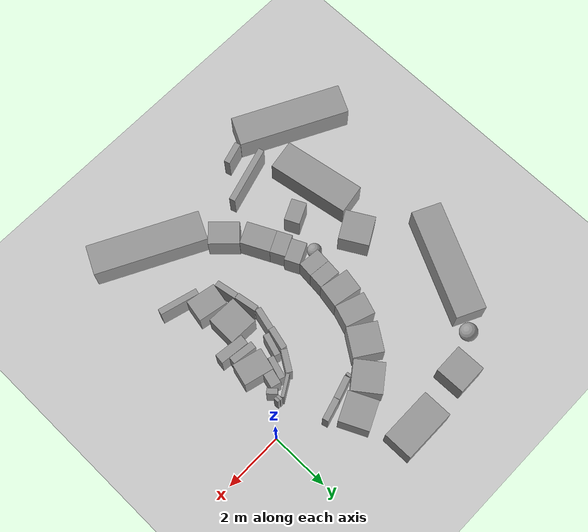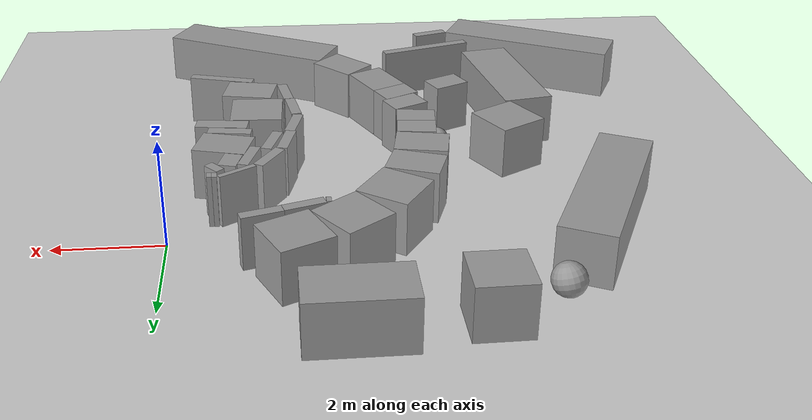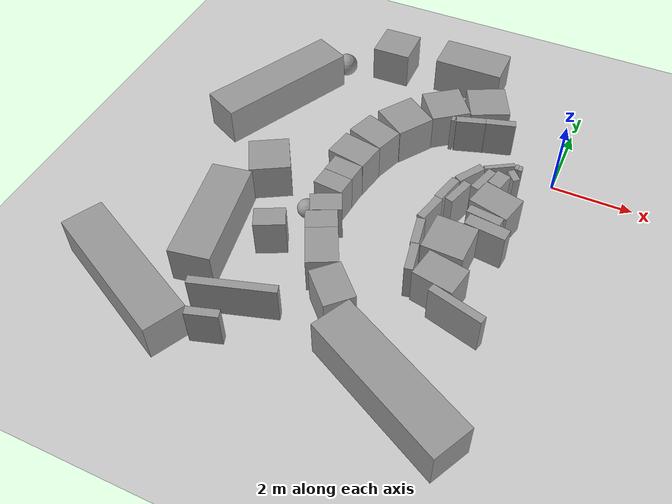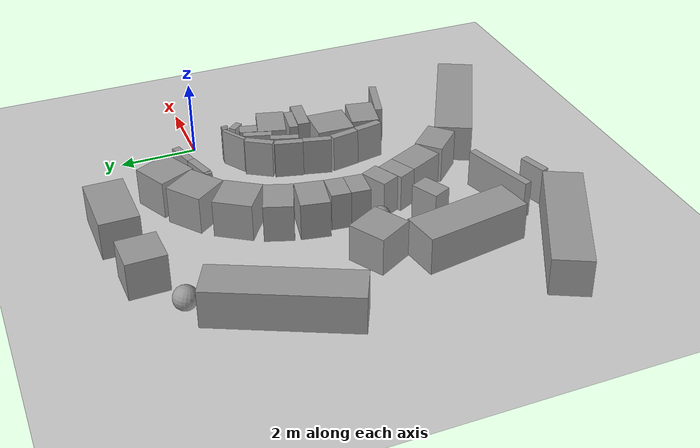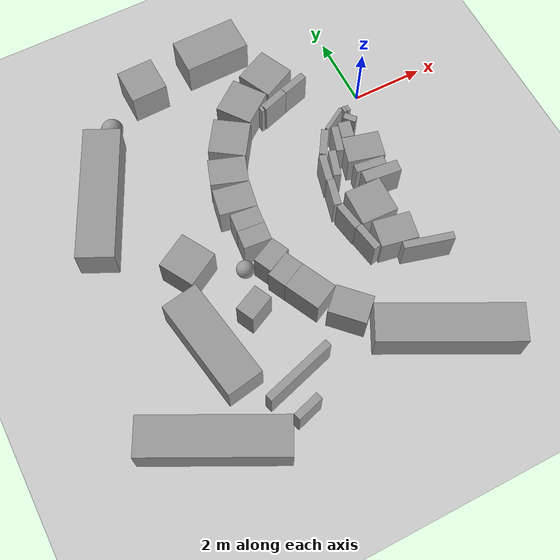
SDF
<sdf version="1.7">
 <world name="default">
  <model name="ground_plane">
   <static>1</static>
   <link name="link">
    <collision name="collision">
     <geometry><plane><normal>0 0 1</normal><size>100 100</size></plane></geometry>
     <surface><friction><ode><mu>100</mu><mu2>50</mu2></ode></friction></surface>
    </collision>
    <visual name="visual">
     <cast_shadows>0</cast_shadows>
     <geometry><plane><normal>0 0 1</normal><size>100 100</size></plane></geometry>
     <material>
      <script><uri>file://media/materials/scripts/gazebo.material</uri><name>Gazebo/Grey</name></script>
     </material>
    </visual>
   </link>
  </model>
  <model name="unit_box_0">
   <pose>-7.78727 -7.01351 0.5 0 0 -0.469438</pose>
   <link name="link">
    <inertial>
     <mass>1</mass>
     <inertia>
      <ixx>0.166667</ixx>
      <ixy>0</ixy>
      <ixz>0</ixz>
      <iyy>0.166667</iyy>
      <iyz>0</iyz>
      <izz>0.166667</izz>
     </inertia>
    </inertial>
    <collision name="collision"><geometry><box><size>3.71633 1 1</size></box></geometry></collision>
    <visual name="visual">
     <geometry><box><size>3.71633 1 1</size></box></geometry>
     <material>
      <script><name>Gazebo/Grey</name><uri>file://media/materials/scripts/gazebo.material</uri></script>
     </material>
    </visual>
   </link>
  </model>
  <model name="unit_box_0_clone_0_clone_clone">
   <pose>-7.67081 0.047149 0.5 1e-06 -0 -2.02166</pose>
   <link name="link">
    <inertial>
     <mass>1</mass>
     <inertia>
      <ixx>0.166667</ixx>
      <ixy>0</ixy>
      <ixz>0</ixz>
      <iyy>0.166667</iyy>
      <iyz>0</iyz>
      <izz>0.166667</izz>
     </inertia>
    </inertial>
    <collision name="collision"><geometry><box><size>3.71633 1 1</size></box></geometry></collision>
    <visual name="visual">
     <geometry><box><size>3.71633 1 1</size></box></geometry>
     <material>
      <script><name>Gazebo/Grey</name><uri>file://media/materials/scripts/gazebo.material</uri></script>
     </material>
    </visual>
   </link>
  </model>
  <model name="unit_box_0_clone_0_clone_clone_clone">
   <pose>-3.13407 2.86522 0.5 0 0 -3.13274</pose>
   <link name="link">
    <inertial>
     <mass>1</mass>
     <inertia>
      <ixx>0.166667</ixx>
      <ixy>0</ixy>
      <ixz>0</ixz>
      <iyy>0.166667</iyy>
      <iyz>0</iyz>
      <izz>0.166667</izz>
     </inertia>
    </inertial>
    <collision name="collision"><geometry><box><size>1.79516 1 1</size></box></geometry></collision>
    <visual name="visual">
     <geometry><box><size>1.79516 1 1</size></box></geometry>
     <material>
      <script><name>Gazebo/Grey</name><uri>file://media/materials/scripts/gazebo.material</uri></script>
     </material>
    </visual>
   </link>
  </model>
  <model name="unit_box_3">
   <pose>-5.29211 2.65055 0.499995 -1e-05 0 0.022351</pose>
   <link name="link">
    <inertial>
     <mass>1</mass>
     <inertia>
      <ixx>0.166667</ixx>
      <ixy>0</ixy>
      <ixz>0</ixz>
      <iyy>0.166667</iyy>
      <iyz>0</iyz>
      <izz>0.166667</izz>
     </inertia>
    </inertial>
    <collision name="collision"><geometry><box><size>1 1 1</size></box></geometry></collision>
    <visual name="visual">
     <geometry><box><size>1 1 1</size></box></geometry>
     <material>
      <script><name>Gazebo/Grey</name><uri>file://media/materials/scripts/gazebo.material</uri></script>
     </material>
    </visual>
   </link>
  </model>
  <model name="unit_box_2_clone">
   <pose>-6.80234 -4.87583 0.5 0 1e-06 0.169071</pose>
   <link name="link">
    <inertial>
     <mass>1</mass>
     <inertia>
      <ixx>0.166667</ixx>
      <ixy>0</ixy>
      <ixz>0</ixz>
      <iyy>0.166667</iyy>
      <iyz>0</iyz>
      <izz>0.166667</izz>
     </inertia>
    </inertial>
    <collision name="collision"><geometry><box><size>1 2.7758 1</size></box></geometry></collision>
    <visual name="visual">
     <geometry><box><size>1 2.7758 1</size></box></geometry>
     <material>
      <script><name>Gazebo/Grey</name><uri>file://media/materials/scripts/gazebo.material</uri></script>
     </material>
    </visual>
   </link>
  </model>
  <model name="unit_sphere_clone_clone">
   <pose>-5.1511 -3.34196 0.240957 0.309906 -0.02036 0.04261</pose>
   <link name="link">
    <inertial>
     <mass>1</mass>
     <inertia><ixx>0.1</ixx><ixy>0</ixy><ixz>0</ixz><iyy>0.1</iyy><iyz>0</iyz><izz>0.1</izz></inertia>
    </inertial>
    <collision name="collision"><geometry><sphere><radius>0.240957</radius></sphere></geometry></collision>
    <visual name="visual">
     <geometry><sphere><radius>0.240957</radius></sphere></geometry>
     <material>
      <script><name>Gazebo/Grey</name><uri>file://media/materials/scripts/gazebo.material</uri></script>
     </material>
    </visual>
   </link>
  </model>
  <model name="unit_box_3_clone">
   <pose>-6.44853 -2.73205 0.5 0 -0 0.520498</pose>
   <link name="link">
    <inertial>
     <mass>1</mass>
     <inertia>
      <ixx>0.166667</ixx>
      <ixy>0</ixy>
      <ixz>0</ixz>
      <iyy>0.166667</iyy>
      <iyz>0</iyz>
      <izz>0.166667</izz>
     </inertia>
    </inertial>
    <collision name="collision"><geometry><box><size>1 1.00121 1</size></box></geometry></collision>
    <visual name="visual">
     <geometry><box><size>1 1.00121 1</size></box></geometry>
     <material>
      <script><name>Gazebo/Grey</name><uri>file://media/materials/scripts/gazebo.material</uri></script>
     </material>
    </visual>
   </link>
  </model>
  <model name="unit_sphere_clone_clone_clone">
   <pose>-6.55487 2.00221 0.302777 0.328933 0.190782 0.081006</pose>
   <link name="link">
    <inertial>
     <mass>1</mass>
     <inertia><ixx>0.1</ixx><ixy>0</ixy><ixz>0</ixz><iyy>0.1</iyy><iyz>0</iyz><izz>0.1</izz></inertia>
    </inertial>
    <collision name="collision"><geometry><sphere><radius>0.302777</radius></sphere></geometry></collision>
    <visual name="visual">
     <geometry><sphere><radius>0.302777</radius></sphere></geometry>
     <material>
      <script><name>Gazebo/Grey</name><uri>file://media/materials/scripts/gazebo.material</uri></script>
     </material>
    </visual>
   </link>
  </model>
  <model name="unit_box_5">
   <pose>-1.55571 -3.40244 0.499995 0 -1e-05 -0.028796</pose>
   <link name="link">
    <inertial>
     <mass>1</mass>
     <inertia>
      <ixx>0.166667</ixx>
      <ixy>0</ixy>
      <ixz>0</ixz>
      <iyy>0.166667</iyy>
      <iyz>0</iyz>
      <izz>0.166667</izz>
     </inertia>
    </inertial>
    <collision name="collision"><geometry><box><size>1 1 1</size></box></geometry></collision>
    <visual name="visual">
     <geometry><box><size>1 1 1</size></box></geometry>
     <material>
      <script><name>Gazebo/Grey</name><uri>file://media/materials/scripts/gazebo.material</uri></script>
     </material>
    </visual>
   </link>
  </model>
  <model name="unit_box_5_clone_0_clone_0_clone_clone_1_clone_clone_clone_clone">
   <pose>-5.5153 -7.40031 0.499991 2e-06 -0 -1.27688</pose>
   <link name="link">
    <inertial>
     <mass>1</mass>
     <inertia>
      <ixx>0.166667</ixx>
      <ixy>0</ixy>
      <ixz>0</ixz>
      <iyy>0.166667</iyy>
      <iyz>0</iyz>
      <izz>0.166667</izz>
     </inertia>
    </inertial>
    <collision name="collision"><geometry><box><size>0.20058 0.74632 1</size></box></geometry></collision>
    <visual name="visual">
     <geometry><box><size>0.20058 0.74632 1</size></box></geometry>
     <material>
      <script><name>Gazebo/Grey</name><uri>file://media/materials/scripts/gazebo.material</uri></script>
     </material>
    </visual>
   </link>
  </model>
  <model name="unit_box_5_clone_0_clone_0_clone_clone_1_clone_clone_clone_clone_clone">
   <pose>-5.30442 -6.52752 0.499988 1.3e-05 -1e-06 -1.28113</pose>
   <link name="link">
    <inertial>
     <mass>1</mass>
     <inertia>
      <ixx>0.166667</ixx>
      <ixy>0</ixy>
      <ixz>0</ixz>
      <iyy>0.166667</iyy>
      <iyz>0</iyz>
      <izz>0.166667</izz>
     </inertia>
    </inertial>
    <collision name="collision"><geometry><box><size>0.20058 1.98568 1</size></box></geometry></collision>
    <visual name="visual">
     <geometry><box><size>0.20058 1.98568 1</size></box></geometry>
     <material>
      <script><name>Gazebo/Grey</name><uri>file://media/materials/scripts/gazebo.material</uri></script>
     </material>
    </visual>
   </link>
  </model>
  <model name="unit_box_0_clone_0">
   <pose>-1.46256 -7.14788 0.499991 -0 5e-06 -0.47369</pose>
   <link name="link">
    <inertial>
     <mass>1</mass>
     <inertia>
      <ixx>0.166667</ixx>
      <ixy>0</ixy>
      <ixz>0</ixz>
      <iyy>0.166667</iyy>
      <iyz>0</iyz>
      <izz>0.166667</izz>
     </inertia>
    </inertial>
    <collision name="collision"><geometry><box><size>3.71633 1 1</size></box></geometry></collision>
    <visual name="visual">
     <geometry><box><size>3.71633 1 1</size></box></geometry>
     <material>
      <script><name>Gazebo/Grey</name><uri>file://media/materials/scripts/gazebo.material</uri></script>
     </material>
    </visual>
   </link>
  </model>
  <model name="unit_box_5_clone_0_clone_0_clone_0">
   <pose>-1.40663 -4.38188 0.5 0 -0 -0.187123</pose>
   <link name="link">
    <inertial>
     <mass>1</mass>
     <inertia>
      <ixx>0.166667</ixx>
      <ixy>0</ixy>
      <ixz>0</ixz>
      <iyy>0.166667</iyy>
      <iyz>0</iyz>
      <izz>0.166667</izz>
     </inertia>
    </inertial>
    <collision name="collision"><geometry><box><size>1 0.746321 1</size></box></geometry></collision>
    <visual name="visual">
     <geometry><box><size>1 0.746321 1</size></box></geometry>
     <material>
      <script><name>Gazebo/Grey</name><uri>file://media/materials/scripts/gazebo.material</uri></script>
     </material>
    </visual>
   </link>
  </model>
  <model name="unit_box_5_clone_0_clone_0_clone_1">
   <pose>-3.38628 -5.63701 0.500001 -2e-06 -0 -0.795251</pose>
   <link name="link">
    <inertial>
     <mass>1</mass>
     <inertia>
      <ixx>0.166667</ixx>
      <ixy>0</ixy>
      <ixz>0</ixz>
      <iyy>0.166667</iyy>
      <iyz>0</iyz>
      <izz>0.166667</izz>
     </inertia>
    </inertial>
    <collision name="collision"><geometry><box><size>1 0.746321 1</size></box></geometry></collision>
    <visual name="visual">
     <geometry><box><size>1 0.746321 1</size></box></geometry>
     <material>
      <script><name>Gazebo/Grey</name><uri>file://media/materials/scripts/gazebo.material</uri></script>
     </material>
    </visual>
   </link>
  </model>
  <model name="unit_box_5_clone_0_clone_0_clone_1_clone">
   <pose>-4.05255 -4.76166 0.499988 6e-06 -0 -1.11267</pose>
   <link name="link">
    <inertial>
     <mass>1</mass>
     <inertia>
      <ixx>0.166667</ixx>
      <ixy>0</ixy>
      <ixz>0</ixz>
      <iyy>0.166667</iyy>
      <iyz>0</iyz>
      <izz>0.166667</izz>
     </inertia>
    </inertial>
    <collision name="collision"><geometry><box><size>1 0.746321 1</size></box></geometry></collision>
    <visual name="visual">
     <geometry><box><size>1 0.746321 1</size></box></geometry>
     <material>
      <script><name>Gazebo/Grey</name><uri>file://media/materials/scripts/gazebo.material</uri></script>
     </material>
    </visual>
   </link>
  </model>
  <model name="unit_box_5_clone_0_clone_0_clone_1_clone_0">
   <pose>-4.38857 -4.08373 0.5 -1e-06 -0 -1.11267</pose>
   <link name="link">
    <inertial>
     <mass>1</mass>
     <inertia>
      <ixx>0.166667</ixx>
      <ixy>0</ixy>
      <ixz>0</ixz>
      <iyy>0.166667</iyy>
      <iyz>0</iyz>
      <izz>0.166667</izz>
     </inertia>
    </inertial>
    <collision name="collision"><geometry><box><size>0.513258 0.746321 1</size></box></geometry></collision>
    <visual name="visual">
     <geometry><box><size>0.513258 0.746321 1</size></box></geometry>
     <material>
      <script><name>Gazebo/Grey</name><uri>file://media/materials/scripts/gazebo.material</uri></script>
     </material>
    </visual>
   </link>
  </model>
  <model name="unit_box_5_clone_0_clone_0_clone_1_clone_0_clone">
   <pose>-4.52205 -3.57417 0.499998 -4e-06 2e-06 -1.12306</pose>
   <link name="link">
    <inertial>
     <mass>1</mass>
     <inertia>
      <ixx>0.166667</ixx>
      <ixy>0</ixy>
      <ixz>0</ixz>
      <iyy>0.166667</iyy>
      <iyz>0</iyz>
      <izz>0.166667</izz>
     </inertia>
    </inertial>
    <collision name="collision"><geometry><box><size>0.513258 0.746321 1</size></box></geometry></collision>
    <visual name="visual">
     <geometry><box><size>0.513258 0.746321 1</size></box></geometry>
     <material>
      <script><name>Gazebo/Grey</name><uri>file://media/materials/scripts/gazebo.material</uri></script>
     </material>
    </visual>
   </link>
  </model>
  <model name="unit_box_5_clone_0_clone_0_clone_1_clone_0_clone_0">
   <pose>-5.4874 -4.51904 0.5 0 0 -1.12362</pose>
   <link name="link">
    <inertial>
     <mass>1</mass>
     <inertia>
      <ixx>0.166667</ixx>
      <ixy>0</ixy>
      <ixz>0</ixz>
      <iyy>0.166667</iyy>
      <iyz>0</iyz>
      <izz>0.166667</izz>
     </inertia>
    </inertial>
    <collision name="collision"><geometry><box><size>0.513258 0.746321 1</size></box></geometry></collision>
    <visual name="visual">
     <geometry><box><size>0.513258 0.746321 1</size></box></geometry>
     <material>
      <script><name>Gazebo/Grey</name><uri>file://media/materials/scripts/gazebo.material</uri></script>
     </material>
    </visual>
   </link>
  </model>
  <model name="unit_box_5_clone_0_clone_0_clone_1_clone_clone">
   <pose>-4.61465 -2.40146 0.499988 6e-06 1e-06 -1.668</pose>
   <link name="link">
    <inertial>
     <mass>1</mass>
     <inertia>
      <ixx>0.166667</ixx>
      <ixy>0</ixy>
      <ixz>0</ixz>
      <iyy>0.166667</iyy>
      <iyz>0</iyz>
      <izz>0.166667</izz>
     </inertia>
    </inertial>
    <collision name="collision"><geometry><box><size>0.502554 0.746321 1</size></box></geometry></collision>
    <visual name="visual">
     <geometry><box><size>0.502554 0.746321 1</size></box></geometry>
     <material>
      <script><name>Gazebo/Grey</name><uri>file://media/materials/scripts/gazebo.material</uri></script>
     </material>
    </visual>
   </link>
  </model>
  <model name="unit_box_5_clone_0_clone_0_clone_2">
   <pose>-4.6368 -1.73143 0.499999 -3e-06 0 -0.181614</pose>
   <link name="link">
    <inertial>
     <mass>1</mass>
     <inertia>
      <ixx>0.166667</ixx>
      <ixy>0</ixy>
      <ixz>0</ixz>
      <iyy>0.166667</iyy>
      <iyz>0</iyz>
      <izz>0.166667</izz>
     </inertia>
    </inertial>
    <collision name="collision"><geometry><box><size>1 0.746321 1</size></box></geometry></collision>
    <visual name="visual">
     <geometry><box><size>1 0.746321 1</size></box></geometry>
     <material>
      <script><name>Gazebo/Grey</name><uri>file://media/materials/scripts/gazebo.material</uri></script>
     </material>
    </visual>
   </link>
  </model>
  <model name="unit_box_5_clone_0_clone_0_clone_2_clone">
   <pose>-4.43643 -0.933163 0.499997 -6e-06 -2e-06 -0.333355</pose>
   <link name="link">
    <inertial>
     <mass>1</mass>
     <inertia>
      <ixx>0.166667</ixx>
      <ixy>0</ixy>
      <ixz>0</ixz>
      <iyy>0.166667</iyy>
      <iyz>0</iyz>
      <izz>0.166667</izz>
     </inertia>
    </inertial>
    <collision name="collision"><geometry><box><size>1 0.746321 1</size></box></geometry></collision>
    <visual name="visual">
     <geometry><box><size>1 0.746321 1</size></box></geometry>
     <material>
      <script><name>Gazebo/Grey</name><uri>file://media/materials/scripts/gazebo.material</uri></script>
     </material>
    </visual>
   </link>
  </model>
  <model name="unit_box_5_clone_0_clone_0_clone_1_clone_clone_clone">
   <pose>-4.65953 -2.90322 0.499989 -3e-06 0 -1.66477</pose>
   <link name="link">
    <inertial>
     <mass>1</mass>
     <inertia>
      <ixx>0.166667</ixx>
      <ixy>0</ixy>
      <ixz>0</ixz>
      <iyy>0.166667</iyy>
      <iyz>0</iyz>
      <izz>0.166667</izz>
     </inertia>
    </inertial>
    <collision name="collision"><geometry><box><size>0.502555 0.746321 1</size></box></geometry></collision>
    <visual name="visual">
     <geometry><box><size>0.502555 0.746321 1</size></box></geometry>
     <material>
      <script><name>Gazebo/Grey</name><uri>file://media/materials/scripts/gazebo.material</uri></script>
     </material>
    </visual>
   </link>
  </model>
  <model name="unit_box_5_clone_1_clone_0">
   <pose>-3.96223 -0.058688 0.5 0 0 -0.595208</pose>
   <link name="link">
    <inertial>
     <mass>1</mass>
     <inertia>
      <ixx>0.166667</ixx>
      <ixy>0</ixy>
      <ixz>0</ixz>
      <iyy>0.166667</iyy>
      <iyz>0</iyz>
      <izz>0.166667</izz>
     </inertia>
    </inertial>
    <collision name="collision"><geometry><box><size>1 1 1</size></box></geometry></collision>
    <visual name="visual">
     <geometry><box><size>1 1 1</size></box></geometry>
     <material>
      <script><name>Gazebo/Grey</name><uri>file://media/materials/scripts/gazebo.material</uri></script>
     </material>
    </visual>
   </link>
  </model>
  <model name="unit_box_5_clone_1_clone_1">
   <pose>-3.17902 0.796679 0.499904 -4e-06 -5e-06 -0.924084</pose>
   <link name="link">
    <inertial>
     <mass>1</mass>
     <inertia>
      <ixx>0.166667</ixx>
      <ixy>0</ixy>
      <ixz>0</ixz>
      <iyy>0.166667</iyy>
      <iyz>0</iyz>
      <izz>0.166667</izz>
     </inertia>
    </inertial>
    <collision name="collision"><geometry><box><size>1 1 1</size></box></geometry></collision>
    <visual name="visual">
     <geometry><box><size>1 1 1</size></box></geometry>
     <material>
      <script><name>Gazebo/Grey</name><uri>file://media/materials/scripts/gazebo.material</uri></script>
     </material>
    </visual>
   </link>
  </model>
  <model name="unit_box_5_clone_1_clone_2">
   <pose>-2.21418 1.31011 0.5 -0 -0 -1.12539</pose>
   <link name="link">
    <inertial>
     <mass>1</mass>
     <inertia>
      <ixx>0.166667</ixx>
      <ixy>0</ixy>
      <ixz>0</ixz>
      <iyy>0.166667</iyy>
      <iyz>0</iyz>
      <izz>0.166667</izz>
     </inertia>
    </inertial>
    <collision name="collision"><geometry><box><size>1 1 1</size></box></geometry></collision>
    <visual name="visual">
     <geometry><box><size>1 1 1</size></box></geometry>
     <material>
      <script><name>Gazebo/Grey</name><uri>file://media/materials/scripts/gazebo.material</uri></script>
     </material>
    </visual>
   </link>
  </model>
  <model name="unit_box_5_clone_0_clone_0_clone_clone_1_clone_clone_clone_clone_0">
   <pose>-1.66793 0.683938 0.499968 -6e-06 2e-06 -1.29103</pose>
   <link name="link">
    <inertial>
     <mass>1</mass>
     <inertia>
      <ixx>0.166667</ixx>
      <ixy>0</ixy>
      <ixz>0</ixz>
      <iyy>0.166667</iyy>
      <iyz>0</iyz>
      <izz>0.166667</izz>
     </inertia>
    </inertial>
    <collision name="collision"><geometry><box><size>0.20058 0.746321 1</size></box></geometry></collision>
    <visual name="visual">
     <geometry><box><size>0.20058 0.746321 1</size></box></geometry>
     <material>
      <script><name>Gazebo/Grey</name><uri>file://media/materials/scripts/gazebo.material</uri></script>
     </material>
    </visual>
   </link>
  </model>
  <model name="unit_box_5_clone_0_clone_0_clone_clone_1_clone_clone_clone_clone_1">
   <pose>-2.38371 0.463777 0.5 -1e-06 -0 -1.26461</pose>
   <link name="link">
    <inertial>
     <mass>1</mass>
     <inertia>
      <ixx>0.166667</ixx>
      <ixy>0</ixy>
      <ixz>0</ixz>
      <iyy>0.166667</iyy>
      <iyz>0</iyz>
      <izz>0.166667</izz>
     </inertia>
    </inertial>
    <collision name="collision"><geometry><box><size>0.20058 0.746321 1</size></box></geometry></collision>
    <visual name="visual">
     <geometry><box><size>0.20058 0.746321 1</size></box></geometry>
     <material>
      <script><name>Gazebo/Grey</name><uri>file://media/materials/scripts/gazebo.material</uri></script>
     </material>
    </visual>
   </link>
  </model>
  <model name="unit_box_5_clone_0_clone_0_clone_2_clone_clone">
   <pose>-0.957635 -1.91897 0.5 0 0 -0.25279</pose>
   <link name="link">
    <inertial>
     <mass>1</mass>
     <inertia>
      <ixx>0.166667</ixx>
      <ixy>0</ixy>
      <ixz>0</ixz>
      <iyy>0.166667</iyy>
      <iyz>0</iyz>
      <izz>0.166667</izz>
     </inertia>
    </inertial>
    <collision name="collision"><geometry><box><size>1 0.746321 1</size></box></geometry></collision>
    <visual name="visual">
     <geometry><box><size>1 0.746321 1</size></box></geometry>
     <material>
      <script><name>Gazebo/Grey</name><uri>file://media/materials/scripts/gazebo.material</uri></script>
     </material>
    </visual>
   </link>
  </model>
  <model name="unit_box_5_clone_0_clone_0_clone_clone_1_clone_0">
   <pose>-1.10279 -1.24273 0.499999 -4e-06 -3e-06 -0.255478</pose>
   <link name="link">
    <inertial>
     <mass>1</mass>
     <inertia>
      <ixx>0.166667</ixx>
      <ixy>0</ixy>
      <ixz>0</ixz>
      <iyy>0.166667</iyy>
      <iyz>0</iyz>
      <izz>0.166667</izz>
     </inertia>
    </inertial>
    <collision name="collision"><geometry><box><size>0.341979 0.472835 1</size></box></geometry></collision>
    <visual name="visual">
     <geometry><box><size>0.341979 0.472835 1</size></box></geometry>
     <material>
      <script><name>Gazebo/Grey</name><uri>file://media/materials/scripts/gazebo.material</uri></script>
     </material>
    </visual>
   </link>
  </model>
  <model name="unit_box_5_clone_0_clone_0_clone_clone_1_clone_0_clone">
   <pose>-0.828056 -0.974736 0.5 1e-06 2e-06 -0.846042</pose>
   <link name="link">
    <inertial>
     <mass>1</mass>
     <inertia>
      <ixx>0.166667</ixx>
      <ixy>0</ixy>
      <ixz>0</ixz>
      <iyy>0.166667</iyy>
      <iyz>0</iyz>
      <izz>0.166667</izz>
     </inertia>
    </inertial>
    <collision name="collision"><geometry><box><size>0.341979 0.183226 1</size></box></geometry></collision>
    <visual name="visual">
     <geometry><box><size>0.341979 0.183226 1</size></box></geometry>
     <material>
      <script><name>Gazebo/Grey</name><uri>file://media/materials/scripts/gazebo.material</uri></script>
     </material>
    </visual>
   </link>
  </model>
  <model name="unit_box_5_clone_0_clone_0_clone_2_clone_clone_clone">
   <pose>-0.89644 -2.76908 0.5 0 0 -0.116214</pose>
   <link name="link">
    <inertial>
     <mass>1</mass>
     <inertia>
      <ixx>0.166667</ixx>
      <ixy>0</ixy>
      <ixz>0</ixz>
      <iyy>0.166667</iyy>
      <iyz>0</iyz>
      <izz>0.166667</izz>
     </inertia>
    </inertial>
    <collision name="collision"><geometry><box><size>1 0.327571 1</size></box></geometry></collision>
    <visual name="visual">
     <geometry><box><size>1 0.327571 1</size></box></geometry>
     <material>
      <script><name>Gazebo/Grey</name><uri>file://media/materials/scripts/gazebo.material</uri></script>
     </material>
    </visual>
   </link>
  </model>
  <model name="unit_box_5_clone_0_clone_0_clone_2_clone_clone_clone_clone">
   <pose>-1.05271 -2.4546 0.500001 0 -1e-06 -0.131551</pose>
   <link name="link">
    <inertial>
     <mass>1</mass>
     <inertia>
      <ixx>0.166667</ixx>
      <ixy>0</ixy>
      <ixz>0</ixz>
      <iyy>0.166667</iyy>
      <iyz>0</iyz>
      <izz>0.166667</izz>
     </inertia>
    </inertial>
    <collision name="collision"><geometry><box><size>0.831329 0.239664 1</size></box></geometry></collision>
    <visual name="visual">
     <geometry><box><size>0.831329 0.239664 1</size></box></geometry>
     <material>
      <script><name>Gazebo/Grey</name><uri>file://media/materials/scripts/gazebo.material</uri></script>
     </material>
    </visual>
   </link>
  </model>
  <model name="unit_box_5_clone_0_clone_0_clone_clone_1_clone_clone_clone_0">
   <pose>-2.12649 -4.24602 0.499997 -8e-06 1e-06 0.176444</pose>
   <link name="link">
    <inertial>
     <mass>1</mass>
     <inertia>
      <ixx>0.166667</ixx>
      <ixy>0</ixy>
      <ixz>0</ixz>
      <iyy>0.166667</iyy>
      <iyz>0</iyz>
      <izz>0.166667</izz>
     </inertia>
    </inertial>
    <collision name="collision"><geometry><box><size>0.20058 0.746321 1</size></box></geometry></collision>
    <visual name="visual">
     <geometry><box><size>0.20058 0.746321 1</size></box></geometry>
     <material>
      <script><name>Gazebo/Grey</name><uri>file://media/materials/scripts/gazebo.material</uri></script>
     </material>
    </visual>
   </link>
  </model>
  <model name="unit_box_5_clone_0_clone_0_clone_clone_1_clone_clone_clone_0_clone">
   <pose>-2.27366 -3.50813 0.500001 1e-06 1e-06 0.1647</pose>
   <link name="link">
    <inertial>
     <mass>1</mass>
     <inertia>
      <ixx>0.166667</ixx>
      <ixy>0</ixy>
      <ixz>0</ixz>
      <iyy>0.166667</iyy>
      <iyz>0</iyz>
      <izz>0.166667</izz>
     </inertia>
    </inertial>
    <collision name="collision"><geometry><box><size>0.20058 0.746321 1</size></box></geometry></collision>
    <visual name="visual">
     <geometry><box><size>0.20058 0.746321 1</size></box></geometry>
     <material>
      <script><name>Gazebo/Grey</name><uri>file://media/materials/scripts/gazebo.material</uri></script>
     </material>
    </visual>
   </link>
  </model>
  <model name="unit_box_5_clone_0_clone_0_clone_clone_1_clone_clone_0">
   <pose>-2.27977 -2.74333 0.499961 0 -0 -0.244189</pose>
   <link name="link">
    <inertial>
     <mass>1</mass>
     <inertia>
      <ixx>0.166667</ixx>
      <ixy>0</ixy>
      <ixz>0</ixz>
      <iyy>0.166667</iyy>
      <iyz>0</iyz>
      <izz>0.166667</izz>
     </inertia>
    </inertial>
    <collision name="collision"><geometry><box><size>0.20058 0.746321 1</size></box></geometry></collision>
    <visual name="visual">
     <geometry><box><size>0.20058 0.746321 1</size></box></geometry>
     <material>
      <script><name>Gazebo/Grey</name><uri>file://media/materials/scripts/gazebo.material</uri></script>
     </material>
    </visual>
   </link>
  </model>
  <model name="unit_box_5_clone_0_clone_0_clone_clone_1_clone_clone_1">
   <pose>-2.12548 -2.01259 0.5 0 0 -0.244583</pose>
   <link name="link">
    <inertial>
     <mass>1</mass>
     <inertia>
      <ixx>0.166667</ixx>
      <ixy>0</ixy>
      <ixz>0</ixz>
      <iyy>0.166667</iyy>
      <iyz>0</iyz>
      <izz>0.166667</izz>
     </inertia>
    </inertial>
    <collision name="collision"><geometry><box><size>0.20058 0.746321 1</size></box></geometry></collision>
    <visual name="visual">
     <geometry><box><size>0.20058 0.746321 1</size></box></geometry>
     <material>
      <script><name>Gazebo/Grey</name><uri>file://media/materials/scripts/gazebo.material</uri></script>
     </material>
    </visual>
   </link>
  </model>
  <model name="unit_box_5_clone_0_clone_0_clone_clone_1_clone_clone_clone_clone_clone_clone_clone">
   <pose>-0.813235 -5.0284 0.499995 -8e-06 -0 -1.8349</pose>
   <link name="link">
    <inertial>
     <mass>1</mass>
     <inertia>
      <ixx>0.166667</ixx>
      <ixy>0</ixy>
      <ixz>0</ixz>
      <iyy>0.166667</iyy>
      <iyz>0</iyz>
      <izz>0.166667</izz>
     </inertia>
    </inertial>
    <collision name="collision"><geometry><box><size>0.20058 1.33249 1</size></box></geometry></collision>
    <visual name="visual">
     <geometry><box><size>0.20058 1.33249 1</size></box></geometry>
     <material>
      <script><name>Gazebo/Grey</name><uri>file://media/materials/scripts/gazebo.material</uri></script>
     </material>
    </visual>
   </link>
  </model>
  <model name="unit_box_5_clone_0_clone_0_clone_clone_1_clone_clone_1_clone">
   <pose>-1.44014 -1.38986 0.499997 9e-06 -1e-06 -0.302205</pose>
   <link name="link">
    <inertial>
     <mass>1</mass>
     <inertia>
      <ixx>0.166667</ixx>
      <ixy>0</ixy>
      <ixz>0</ixz>
      <iyy>0.166667</iyy>
      <iyz>0</iyz>
      <izz>0.166667</izz>
     </inertia>
    </inertial>
    <collision name="collision"><geometry><box><size>0.20058 0.746321 1</size></box></geometry></collision>
    <visual name="visual">
     <geometry><box><size>0.20058 0.746321 1</size></box></geometry>
     <material>
      <script><name>Gazebo/Grey</name><uri>file://media/materials/scripts/gazebo.material</uri></script>
     </material>
    </visual>
   </link>
  </model>
  <model name="unit_box_5_clone_0_clone_0_clone_clone_1_clone_clone_1_clone_clone">
   <pose>-1.80367 -1.3177 0.499948 -0 1e-06 -0.56859</pose>
   <link name="link">
    <inertial>
     <mass>1</mass>
     <inertia>
      <ixx>0.166667</ixx>
      <ixy>0</ixy>
      <ixz>0</ixz>
      <iyy>0.166667</iyy>
      <iyz>0</iyz>
      <izz>0.166667</izz>
     </inertia>
    </inertial>
    <collision name="collision"><geometry><box><size>0.20058 0.746321 1</size></box></geometry></collision>
    <visual name="visual">
     <geometry><box><size>0.20058 0.746321 1</size></box></geometry>
     <material>
      <script><name>Gazebo/Grey</name><uri>file://media/materials/scripts/gazebo.material</uri></script>
     </material>
    </visual>
   </link>
  </model>
  <model name="unit_box_5_clone_0_clone_0_clone_clone_1_clone_clone_1_clone_clone_clone">
   <pose>-1.23104 -0.815198 0.5 0 0 -1.02588</pose>
   <link name="link">
    <inertial>
     <mass>1</mass>
     <inertia>
      <ixx>0.166667</ixx>
      <ixy>0</ixy>
      <ixz>0</ixz>
      <iyy>0.166667</iyy>
      <iyz>0</iyz>
      <izz>0.166667</izz>
     </inertia>
    </inertial>
    <collision name="collision"><geometry><box><size>0.107515 0.746321 1</size></box></geometry></collision>
    <visual name="visual">
     <geometry><box><size>0.107515 0.746321 1</size></box></geometry>
     <material>
      <script><name>Gazebo/Grey</name><uri>file://media/materials/scripts/gazebo.material</uri></script>
     </material>
    </visual>
   </link>
  </model>
  <model name="unit_box_5_clone_0_clone_0_clone_clone_1_clone_0_clone_clone_clone">
   <pose>-0.748336 -0.689274 0.49999 0 -0 -1.53619</pose>
   <link name="link">
    <inertial>
     <mass>1</mass>
     <inertia>
      <ixx>0.166667</ixx>
      <ixy>0</ixy>
      <ixz>0</ixz>
      <iyy>0.166667</iyy>
      <iyz>0</iyz>
      <izz>0.166667</izz>
     </inertia>
    </inertial>
    <collision name="collision"><geometry><box><size>0.165609 0.0899037 1</size></box></geometry></collision>
    <visual name="visual">
     <geometry><box><size>0.165609 0.0899037 1</size></box></geometry>
     <material>
      <script><name>Gazebo/Grey</name><uri>file://media/materials/scripts/gazebo.material</uri></script>
     </material>
    </visual>
   </link>
  </model>
  <model name="unit_box_5_clone_0_clone_0_clone_clone_1_clone_0_clone_clone_clone_clone">
   <pose>-0.838776 -0.675654 0.5 0 -0 -1.53619</pose>
   <link name="link">
    <inertial>
     <mass>1</mass>
     <inertia>
      <ixx>0.166667</ixx>
      <ixy>0</ixy>
      <ixz>0</ixz>
      <iyy>0.166667</iyy>
      <iyz>0</iyz>
      <izz>0.166667</izz>
     </inertia>
    </inertial>
    <collision name="collision"><geometry><box><size>0.165609 0.089904 1</size></box></geometry></collision>
    <visual name="visual">
     <geometry><box><size>0.165609 0.089904 1</size></box></geometry>
     <material>
      <script><name>Gazebo/Grey</name><uri>file://media/materials/scripts/gazebo.material</uri></script>
     </material>
    </visual>
   </link>
  </model>
  <model name="unit_box_5_clone_0_clone_0_clone_clone_1_clone_clone_1_clone_clone_0">
   <pose>-1.85506 -2.00027 0.500001 -1e-06 -0 -0.302493</pose>
   <link name="link">
    <inertial>
     <mass>1</mass>
     <inertia>
      <ixx>0.166667</ixx>
      <ixy>0</ixy>
      <ixz>0</ixz>
      <iyy>0.166667</iyy>
      <iyz>0</iyz>
      <izz>0.166667</izz>
     </inertia>
    </inertial>
    <collision name="collision"><geometry><box><size>0.20058 0.746321 1</size></box></geometry></collision>
    <visual name="visual">
     <geometry><box><size>0.20058 0.746321 1</size></box></geometry>
     <material>
      <script><name>Gazebo/Grey</name><uri>file://media/materials/scripts/gazebo.material</uri></script>
     </material>
    </visual>
   </link>
  </model>
  <model name="unit_box_5_clone_0_clone_0_clone_clone_1_clone_0_clone_clone_clone_clone_clone">
   <pose>-2.80378 0.336176 0.499991 -1e-06 6e-06 -1.53493</pose>
   <link name="link">
    <inertial>
     <mass>1</mass>
     <inertia>
      <ixx>0.166667</ixx>
      <ixy>0</ixy>
      <ixz>0</ixz>
      <iyy>0.166667</iyy>
      <iyz>0</iyz>
      <izz>0.166667</izz>
     </inertia>
    </inertial>
    <collision name="collision"><geometry><box><size>0.165609 0.089904 1</size></box></geometry></collision>
    <visual name="visual">
     <geometry><box><size>0.165609 0.089904 1</size></box></geometry>
     <material>
      <script><name>Gazebo/Grey</name><uri>file://media/materials/scripts/gazebo.material</uri></script>
     </material>
    </visual>
   </link>
  </model>
 </world>
</sdf>
